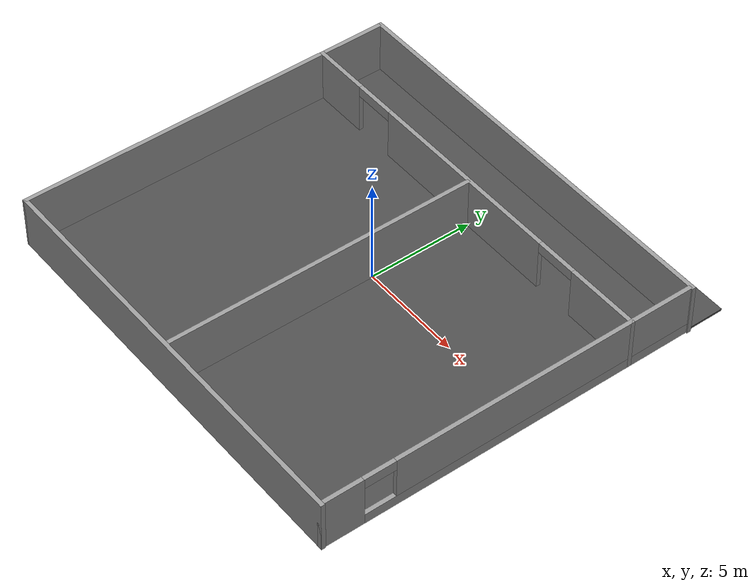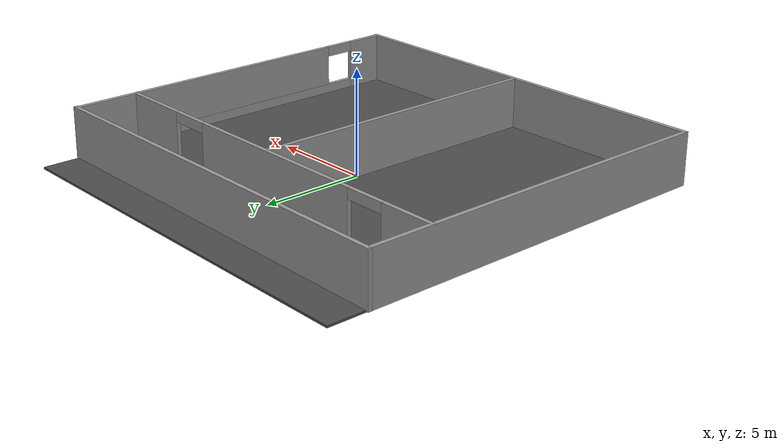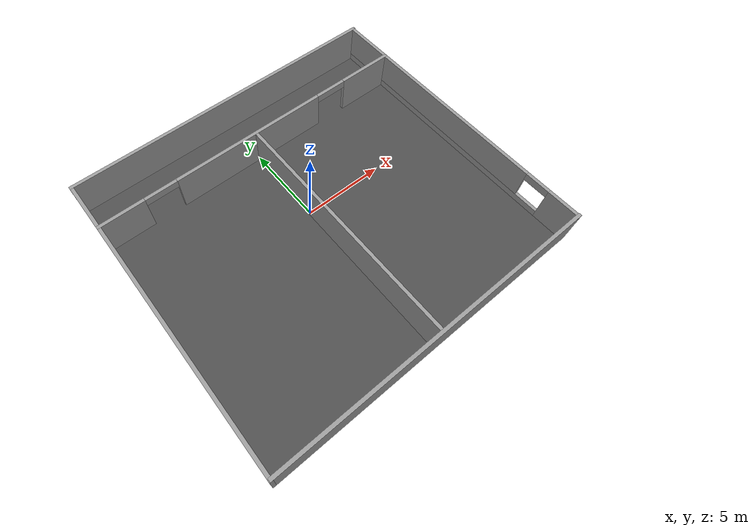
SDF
<sdf version="1.4">
 <world name="default">
  <scene><ambient>0.5 0.5 0.5 1</ambient><background>0.5 0.5 0.5 1</background><shadows>0</shadows></scene>
  <physics type="ode">
   <gravity>0 0 -9.81</gravity>
   <ode>
    <solver><type>quick</type><iters>10</iters><sor>1.3</sor></solver>
    <constraints>
     <cfm>0</cfm>
     <erp>0.2</erp>
     <contact_max_correcting_vel>100</contact_max_correcting_vel>
     <contact_surface_layer>0.001</contact_surface_layer>
    </constraints>
   </ode>
   <real_time_update_rate>1000</real_time_update_rate>
   <max_step_size>0.001</max_step_size>
   <real_time_factor>1</real_time_factor>
  </physics>
  <light name="directional_light_1" type="directional">
   <cast_shadows>0</cast_shadows>
   <pose>0 0 30 0.1 0.1 0</pose>
   <diffuse>1 1 1 1</diffuse>
   <specular>0.1 0.1 0.1 1</specular>
   <attenuation><range>300</range></attenuation>
   <direction>0.1 0.1 -1</direction>
  </light>
  <model name="plane_model">
   <static>1</static>
   <link name="plane_model_link">
    <collision name="plane_model_collision">
     <geometry><plane><normal>0 0 1</normal><size>1 1</size></plane></geometry>
     <surface>
      <friction><ode><mu>10</mu><mu2>10</mu2><fdir1>0 0 0</fdir1><slip1>0</slip1><slip2>0</slip2></ode></friction>
      <bounce><restitution_coefficient>0</restitution_coefficient><threshold>1e+06</threshold></bounce>
      <contact>
       <ode>
        <soft_cfm>0</soft_cfm>
        <soft_erp>0.2</soft_erp>
        <kp>1e+10</kp>
        <kd>1</kd>
        <max_vel>100</max_vel>
        <min_depth>0.0001</min_depth>
       </ode>
      </contact>
     </surface>
    </collision>
    <velocity_decay><linear>0</linear><angular>0</angular></velocity_decay>
   </link>
  </model>
  <model name="asphalt_plane">
   <static>1</static>
   <link name="link">
    <collision name="collision"><geometry><box><size>20 20 0.1</size></box></geometry></collision>
    <visual name="visual">
     <cast_shadows>0</cast_shadows>
     <geometry><box><size>20 20 0.1</size></box></geometry>
     <material>
      <script>
       <uri>model://asphalt_plane/materials/scripts</uri>
       <uri>model://asphalt_plane/materials/textures</uri>
       <name>vrc/asphalt</name>
      </script>
     </material>
    </visual>
    <velocity_decay><linear>0</linear><angular>0</angular></velocity_decay>
   </link>
  </model>
  <model name="two_rooms_2">
   <pose>-0.02507 -0.011079 0 0 -0 0</pose>
   <link name="Wall_0">
    <collision name="Wall_0_Collision">
     <geometry><box><size>20.2 0.2 2.5</size></box></geometry>
     <pose>0 0 1.25 0 -0 0</pose>
    </collision>
    <visual name="Wall_0_Visual">
     <pose>0 0 1.25 0 -0 0</pose>
     <geometry><box><size>20.2 0.2 2.5</size></box></geometry>
     <material>
      <script><uri>file://media/materials/scripts/gazebo.material</uri><name>Gazebo/Grey</name></script>
     </material>
    </visual>
    <velocity_decay><linear>0</linear><angular>0</angular></velocity_decay>
    <pose>0.040456 -10 0 0 -0 0</pose>
   </link>
   <link name="Wall_10">
    <collision name="Wall_10_Collision">
     <geometry><box><size>18.2 0.2 2.5</size></box></geometry>
     <pose>0 0 1.25 0 -0 0</pose>
    </collision>
    <visual name="Wall_10_Visual">
     <pose>0 0 1.25 0 -0 0</pose>
     <geometry><box><size>18.2 0.2 2.5</size></box></geometry>
     <material>
      <script><uri>file://media/materials/scripts/gazebo.material</uri><name>Gazebo/Grey</name></script>
     </material>
    </visual>
    <velocity_decay><linear>0</linear><angular>0</angular></velocity_decay>
    <pose>-10 -1 0 0 -0 1.5708</pose>
   </link>
   <link name="Wall_12">
    <collision name="Wall_12_Collision">
     <geometry><box><size>20.266 0.2 2.5</size></box></geometry>
     <pose>0 0 1.25 0 -0 0</pose>
    </collision>
    <visual name="Wall_12_Visual">
     <pose>0 0 1.25 0 -0 0</pose>
     <geometry><box><size>20.266 0.2 2.5</size></box></geometry>
     <material>
      <script><uri>file://media/materials/scripts/gazebo.material</uri><name>Gazebo/Grey</name></script>
     </material>
    </visual>
    <velocity_decay><linear>0</linear><angular>0</angular></velocity_decay>
    <pose>0.022865 8.12851 0 0 -0 3.14159</pose>
   </link>
   <link name="Wall_14">
    <pose>0 5 0 0 -0 0</pose>
    <visual name="Wall_14_Visual_0">
     <pose>-8.6941 0 1.25 0 -0 0</pose>
     <geometry><box><size>2.8118 0.2 2.5</size></box></geometry>
     <material>
      <script><uri>file://media/materials/scripts/gazebo.material</uri><name>Gazebo/Grey</name></script>
     </material>
    </visual>
    <collision name="Wall_14_Collision_0">
     <geometry><box><size>2.8118 0.2 2.5</size></box></geometry>
     <pose>-8.6941 0 1.25 0 -0 0</pose>
    </collision>
    <visual name="Wall_14_Visual_1">
     <pose>-0.376654 0 1.25 0 -0 0</pose>
     <geometry><box><size>9.8231 0.2 2.5</size></box></geometry>
     <material>
      <script><uri>file://media/materials/scripts/gazebo.material</uri><name>Gazebo/Grey</name></script>
     </material>
    </visual>
    <collision name="Wall_14_Collision_1">
     <geometry><box><size>9.8231 0.2 2.5</size></box></geometry>
     <pose>-0.376654 0 1.25 0 -0 0</pose>
    </collision>
    <visual name="Wall_14_Visual_2">
     <pose>8.31745 0 1.25 0 -0 0</pose>
     <geometry><box><size>3.5651 0.2 2.5</size></box></geometry>
     <material>
      <script><uri>file://media/materials/scripts/gazebo.material</uri><name>Gazebo/Grey</name></script>
     </material>
    </visual>
    <collision name="Wall_14_Collision_2">
     <geometry><box><size>3.5651 0.2 2.5</size></box></geometry>
     <pose>8.31745 0 1.25 0 -0 0</pose>
    </collision>
    <visual name="Wall_14_Visual_3">
     <pose>-6.2882 0 2.25 0 -0 0</pose>
     <geometry><box><size>2 0.2 0.5</size></box></geometry>
     <material>
      <script><uri>file://media/materials/scripts/gazebo.material</uri><name>Gazebo/Grey</name></script>
     </material>
    </visual>
    <collision name="Wall_14_Collision_3">
     <geometry><box><size>2 0.2 0.5</size></box></geometry>
     <pose>-6.2882 0 2.25 0 -0 0</pose>
    </collision>
    <visual name="Wall_14_Visual_4">
     <pose>5.5349 0 2.25 0 -0 0</pose>
     <geometry><box><size>2 0.2 0.5</size></box></geometry>
     <material>
      <script><uri>file://media/materials/scripts/gazebo.material</uri><name>Gazebo/Grey</name></script>
     </material>
    </visual>
    <collision name="Wall_14_Collision_4">
     <geometry><box><size>2 0.2 0.5</size></box></geometry>
     <pose>5.5349 0 2.25 0 -0 0</pose>
    </collision>
    <velocity_decay><linear>0</linear><angular>0</angular></velocity_decay>
   </link>
   <link name="Wall_16">
    <collision name="Wall_16_Collision">
     <geometry><box><size>15.047 0.2 2.5</size></box></geometry>
     <pose>0 0 1.25 0 -0 0</pose>
    </collision>
    <visual name="Wall_16_Visual">
     <pose>0 0 1.25 0 -0 0</pose>
     <geometry><box><size>15.047 0.2 2.5</size></box></geometry>
     <material>
      <script><uri>file://media/materials/scripts/gazebo.material</uri><name>Gazebo/Grey</name></script>
     </material>
    </visual>
    <velocity_decay><linear>0</linear><angular>0</angular></velocity_decay>
    <pose>0 -2.5315 0 0 0 -1.5708</pose>
   </link>
   <link name="Wall_8">
    <pose>10 -1 0 0 -0 1.5708</pose>
    <visual name="Wall_8_Visual_0">
     <pose>-8.08495 0 1.25 0 -0 0</pose>
     <geometry><box><size>2.0301 0.2 2.5</size></box></geometry>
     <material>
      <script><uri>file://media/materials/scripts/gazebo.material</uri><name>Gazebo/Grey</name></script>
     </material>
    </visual>
    <collision name="Wall_8_Collision_0">
     <geometry><box><size>2.0301 0.2 2.5</size></box></geometry>
     <pose>-8.08495 0 1.25 0 -0 0</pose>
    </collision>
    <visual name="Wall_8_Visual_1">
     <pose>1.01505 0 0.25 0 -0 0</pose>
     <geometry><box><size>16.1699 0.2 0.5</size></box></geometry>
     <material>
      <script><uri>file://media/materials/scripts/gazebo.material</uri><name>Gazebo/Grey</name></script>
     </material>
    </visual>
    <collision name="Wall_8_Collision_1">
     <geometry><box><size>16.1699 0.2 0.5</size></box></geometry>
     <pose>1.01505 0 0.25 0 -0 0</pose>
    </collision>
    <visual name="Wall_8_Visual_2">
     <pose>1.76505 0 1.5 0 -0 0</pose>
     <geometry><box><size>14.6699 0.2 2</size></box></geometry>
     <material>
      <script><uri>file://media/materials/scripts/gazebo.material</uri><name>Gazebo/Grey</name></script>
     </material>
    </visual>
    <collision name="Wall_8_Collision_2">
     <geometry><box><size>14.6699 0.2 2</size></box></geometry>
     <pose>1.76505 0 1.5 0 -0 0</pose>
    </collision>
    <visual name="Wall_8_Visual_3">
     <pose>-6.3199 0 2.25 0 -0 0</pose>
     <geometry><box><size>1.5 0.2 0.5</size></box></geometry>
     <material>
      <script><uri>file://media/materials/scripts/gazebo.material</uri><name>Gazebo/Grey</name></script>
     </material>
    </visual>
    <collision name="Wall_8_Collision_3">
     <geometry><box><size>1.5 0.2 0.5</size></box></geometry>
     <pose>-6.3199 0 2.25 0 -0 0</pose>
    </collision>
    <velocity_decay><linear>0</linear><angular>0</angular></velocity_decay>
   </link>
   <static>1</static>
  </model>
  <spherical_coordinates>
   <surface_model>EARTH_WGS84</surface_model>
   <latitude_deg>0</latitude_deg>
   <longitude_deg>0</longitude_deg>
   <elevation>0</elevation>
   <heading_deg>0</heading_deg>
  </spherical_coordinates>
 </world>
</sdf>
